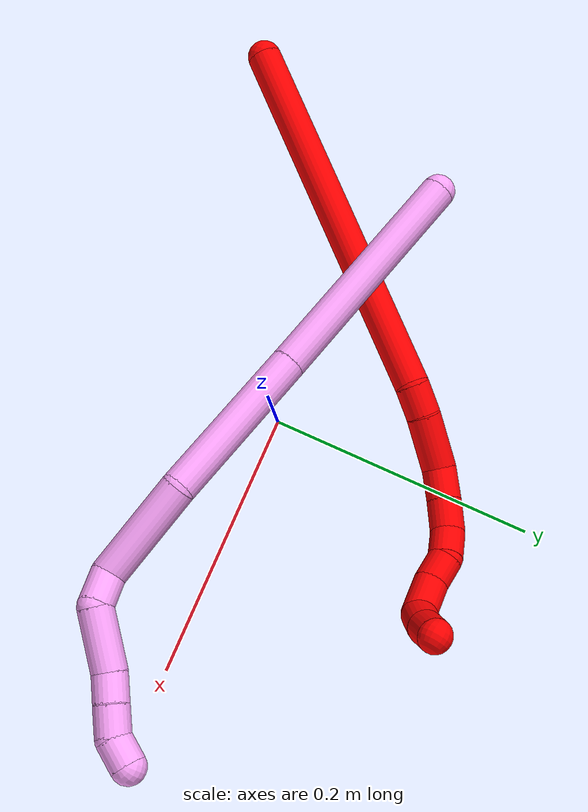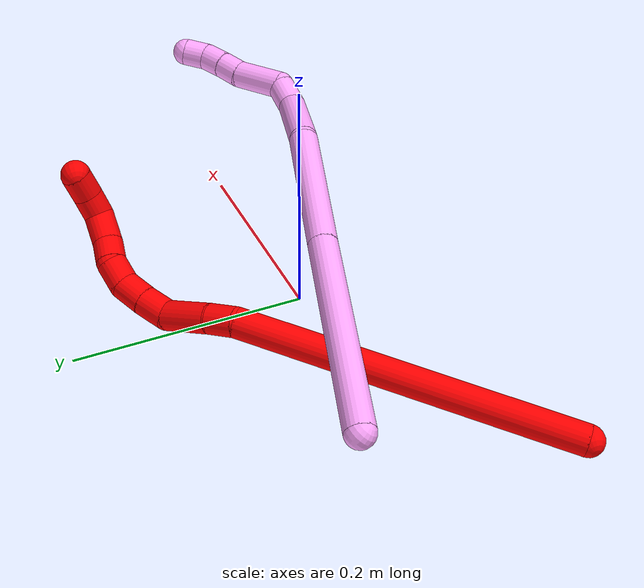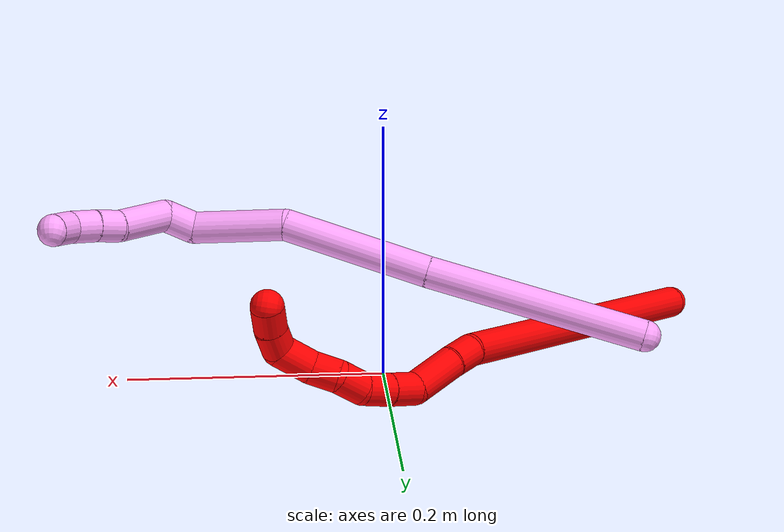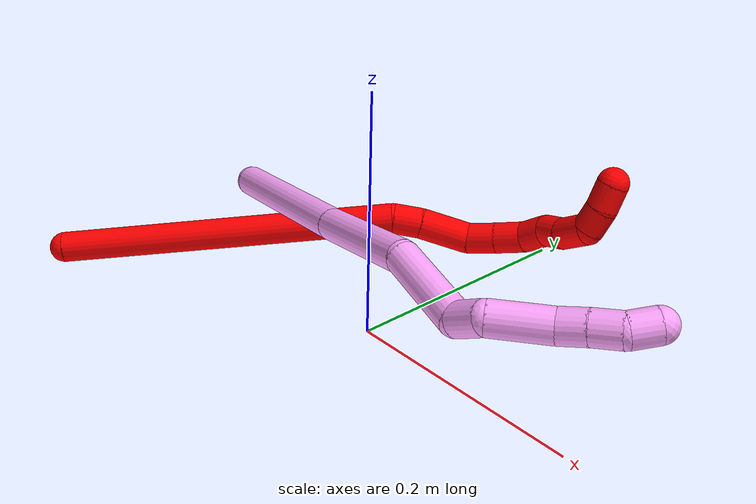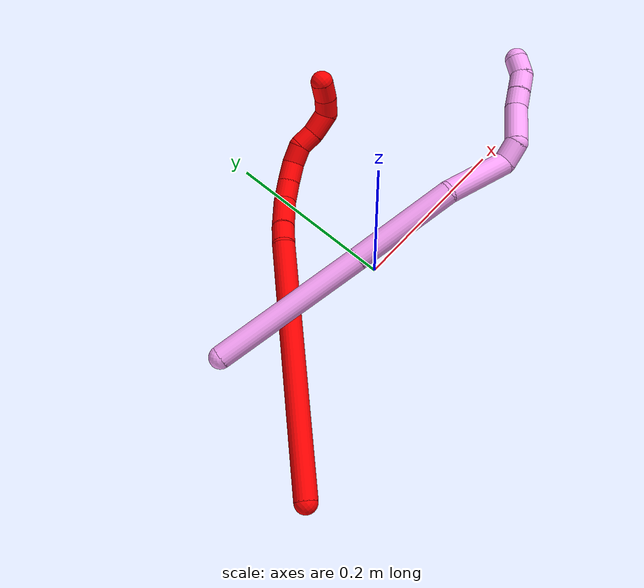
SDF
<sdf version="1.7">
 <world name="default">
  <model name="2">
   <static>0</static>
   <link name="2">
    <collision name="collision-cylinder-e_1_1_4">
     <pose>0.071573 0.083416 -0.084898 -2.365 0.541415 -1.1922</pose>
     <geometry><cylinder><radius>0.0125</radius><length>0.277767</length></cylinder></geometry>
     <surface>
      <friction><ode><mu>1.16</mu><mu2>1.16</mu2><slip1>0</slip1><slip2>0</slip2></ode></friction>
      <contact><ode><kp>1e+06</kp><kd>1</kd><max_vel>0</max_vel><min_depth>0.001</min_depth></ode></contact>
     </surface>
    </collision>
    <visual name="visual-cylinder-e_1_1_4">
     <pose>0.071573 0.083416 -0.084898 -2.365 0.541415 -1.1922</pose>
     <geometry><cylinder><radius>0.0125</radius><length>0.277767</length></cylinder></geometry>
     <material><ambient>1 0 0 1</ambient></material>
    </visual>
    <collision name="collision-cylinder-e_2_4_5">
     <pose>0.146439 0.175513 -0.17666 -2.23977 0.289108 -0.584113</pose>
     <geometry><cylinder><radius>0.0125</radius><length>0.023093</length></cylinder></geometry>
     <surface>
      <friction><ode><mu>1.16</mu><mu2>1.16</mu2><slip1>0</slip1><slip2>0</slip2></ode></friction>
      <contact><ode><kp>1e+06</kp><kd>1</kd><max_vel>0</max_vel><min_depth>0.001</min_depth></ode></contact>
     </surface>
    </collision>
    <visual name="visual-cylinder-e_2_4_5">
     <pose>0.146439 0.175513 -0.17666 -2.23977 0.289108 -0.584113</pose>
     <geometry><cylinder><radius>0.0125</radius><length>0.023093</length></cylinder></geometry>
     <material><ambient>1 0 0 1</ambient></material>
    </visual>
    <collision name="collision-cylinder-e_3_5_6">
     <pose>0.152889 0.200053 -0.195952 -2.23552 0.155488 -0.317359</pose>
     <geometry><cylinder><radius>0.0125</radius><length>0.040787</length></cylinder></geometry>
     <surface>
      <friction><ode><mu>1.16</mu><mu2>1.16</mu2><slip1>0</slip1><slip2>0</slip2></ode></friction>
      <contact><ode><kp>1e+06</kp><kd>1</kd><max_vel>0</max_vel><min_depth>0.001</min_depth></ode></contact>
     </surface>
    </collision>
    <visual name="visual-cylinder-e_3_5_6">
     <pose>0.152889 0.200053 -0.195952 -2.23552 0.155488 -0.317359</pose>
     <geometry><cylinder><radius>0.0125</radius><length>0.040787</length></cylinder></geometry>
     <material><ambient>1 0 0 1</ambient></material>
    </visual>
    <collision name="collision-cylinder-e_4_6_7">
     <pose>0.161036 0.221166 -0.218004 -2.64181 0.426927 -1.4082</pose>
     <geometry><cylinder><radius>0.0125</radius><length>0.024095</length></cylinder></geometry>
     <surface>
      <friction><ode><mu>1.16</mu><mu2>1.16</mu2><slip1>0</slip1><slip2>0</slip2></ode></friction>
      <contact><ode><kp>1e+06</kp><kd>1</kd><max_vel>0</max_vel><min_depth>0.001</min_depth></ode></contact>
     </surface>
    </collision>
    <visual name="visual-cylinder-e_4_6_7">
     <pose>0.161036 0.221166 -0.218004 -2.64181 0.426927 -1.4082</pose>
     <geometry><cylinder><radius>0.0125</radius><length>0.024095</length></cylinder></geometry>
     <material><ambient>1 0 0 1</ambient></material>
    </visual>
    <collision name="collision-cylinder-e_5_7_8">
     <pose>0.171047 0.230731 -0.237363 -2.7248 0.440883 -1.62871</pose>
     <geometry><cylinder><radius>0.0125</radius><length>0.023543</length></cylinder></geometry>
     <surface>
      <friction><ode><mu>1.16</mu><mu2>1.16</mu2><slip1>0</slip1><slip2>0</slip2></ode></friction>
      <contact><ode><kp>1e+06</kp><kd>1</kd><max_vel>0</max_vel><min_depth>0.001</min_depth></ode></contact>
     </surface>
    </collision>
    <visual name="visual-cylinder-e_5_7_8">
     <pose>0.171047 0.230731 -0.237363 -2.7248 0.440883 -1.62871</pose>
     <geometry><cylinder><radius>0.0125</radius><length>0.023543</length></cylinder></geometry>
     <material><ambient>1 0 0 1</ambient></material>
    </visual>
    <collision name="collision-cylinder-e_6_8_9">
     <pose>0.181599 0.234856 -0.256491 3.12195 0.531854 3.06951</pose>
     <geometry><cylinder><radius>0.0125</radius><length>0.021803</length></cylinder></geometry>
     <surface>
      <friction><ode><mu>1.16</mu><mu2>1.16</mu2><slip1>0</slip1><slip2>0</slip2></ode></friction>
      <contact><ode><kp>1e+06</kp><kd>1</kd><max_vel>0</max_vel><min_depth>0.001</min_depth></ode></contact>
     </surface>
    </collision>
    <visual name="visual-cylinder-e_6_8_9">
     <pose>0.181599 0.234856 -0.256491 3.12195 0.531854 3.06951</pose>
     <geometry><cylinder><radius>0.0125</radius><length>0.021803</length></cylinder></geometry>
     <material><ambient>1 0 0 1</ambient></material>
    </visual>
    <collision name="collision-cylinder-e_7_9_10">
     <pose>0.18807 0.233338 -0.276072 3.0114 0.091421 1.22376</pose>
     <geometry><cylinder><radius>0.0125</radius><length>0.020634</length></cylinder></geometry>
     <surface>
      <friction><ode><mu>1.16</mu><mu2>1.16</mu2><slip1>0</slip1><slip2>0</slip2></ode></friction>
      <contact><ode><kp>1e+06</kp><kd>1</kd><max_vel>0</max_vel><min_depth>0.001</min_depth></ode></contact>
     </surface>
    </collision>
    <visual name="visual-cylinder-e_7_9_10">
     <pose>0.18807 0.233338 -0.276072 3.0114 0.091421 1.22376</pose>
     <geometry><cylinder><radius>0.0125</radius><length>0.020634</length></cylinder></geometry>
     <material><ambient>1 0 0 1</ambient></material>
    </visual>
    <collision name="collision-cylinder-e_8_10_11">
     <pose>0.193708 0.229751 -0.298847 2.96448 0.351933 2.21532</pose>
     <geometry><cylinder><radius>0.0125</radius><length>0.027246</length></cylinder></geometry>
     <surface>
      <friction><ode><mu>1.16</mu><mu2>1.16</mu2><slip1>0</slip1><slip2>0</slip2></ode></friction>
      <contact><ode><kp>1e+06</kp><kd>1</kd><max_vel>0</max_vel><min_depth>0.001</min_depth></ode></contact>
     </surface>
    </collision>
    <visual name="visual-cylinder-e_8_10_11">
     <pose>0.193708 0.229751 -0.298847 2.96448 0.351933 2.21532</pose>
     <geometry><cylinder><radius>0.0125</radius><length>0.027246</length></cylinder></geometry>
     <material><ambient>1 0 0 1</ambient></material>
    </visual>
    <collision name="collision-cylinder-e_9_11_12">
     <pose>0.207216 0.224751 -0.315456 2.54233 1.06592 2.17673</pose>
     <geometry><cylinder><radius>0.0125</radius><length>0.020137</length></cylinder></geometry>
     <surface>
      <friction><ode><mu>1.16</mu><mu2>1.16</mu2><slip1>0</slip1><slip2>0</slip2></ode></friction>
      <contact><ode><kp>1e+06</kp><kd>1</kd><max_vel>0</max_vel><min_depth>0.001</min_depth></ode></contact>
     </surface>
    </collision>
    <visual name="visual-cylinder-e_9_11_12">
     <pose>0.207216 0.224751 -0.315456 2.54233 1.06592 2.17673</pose>
     <geometry><cylinder><radius>0.0125</radius><length>0.020137</length></cylinder></geometry>
     <material><ambient>1 0 0 1</ambient></material>
    </visual>
    <collision name="collision-cylinder-e_10_12_2">
     <pose>0.225705 0.218908 -0.321914 2.23761 1.18414 1.89106</pose>
     <geometry><cylinder><radius>0.0125</radius><length>0.020896</length></cylinder></geometry>
     <surface>
      <friction><ode><mu>1.16</mu><mu2>1.16</mu2><slip1>0</slip1><slip2>0</slip2></ode></friction>
      <contact><ode><kp>1e+06</kp><kd>1</kd><max_vel>0</max_vel><min_depth>0.001</min_depth></ode></contact>
     </surface>
    </collision>
    <visual name="visual-cylinder-e_10_12_2">
     <pose>0.225705 0.218908 -0.321914 2.23761 1.18414 1.89106</pose>
     <geometry><cylinder><radius>0.0125</radius><length>0.020896</length></cylinder></geometry>
     <material><ambient>1 0 0 1</ambient></material>
    </visual>
    <collision name="collision-sphere-2">
     <pose>0.235381 0.215812 -0.324351 0 -0 0</pose>
     <geometry><sphere><radius>0.0125</radius></sphere></geometry>
     <surface>
      <friction><ode><mu>1.16</mu><mu2>1.16</mu2><slip1>0</slip1><slip2>0</slip2></ode></friction>
      <contact><ode><kp>1e+06</kp><kd>1</kd><max_vel>0</max_vel><min_depth>0.001</min_depth></ode></contact>
     </surface>
    </collision>
    <visual name="visual-sphere-2">
     <pose>0.235381 0.215812 -0.324351 0 -0 0</pose>
     <geometry><sphere><radius>0.0125</radius></sphere></geometry>
     <material><ambient>1 0 0 1</ambient></material>
    </visual>
    <collision name="collision-sphere-12">
     <pose>0.216028 0.222004 -0.319478 0 -0 0</pose>
     <geometry><sphere><radius>0.0125</radius></sphere></geometry>
     <surface>
      <friction><ode><mu>1.16</mu><mu2>1.16</mu2><slip1>0</slip1><slip2>0</slip2></ode></friction>
      <contact><ode><kp>1e+06</kp><kd>1</kd><max_vel>0</max_vel><min_depth>0.001</min_depth></ode></contact>
     </surface>
    </collision>
    <visual name="visual-sphere-12">
     <pose>0.216028 0.222004 -0.319478 0 -0 0</pose>
     <geometry><sphere><radius>0.0125</radius></sphere></geometry>
     <material><ambient>1 0 0 1</ambient></material>
    </visual>
    <collision name="collision-sphere-11">
     <pose>0.198404 0.227498 -0.311435 0 -0 0</pose>
     <geometry><sphere><radius>0.0125</radius></sphere></geometry>
     <surface>
      <friction><ode><mu>1.16</mu><mu2>1.16</mu2><slip1>0</slip1><slip2>0</slip2></ode></friction>
      <contact><ode><kp>1e+06</kp><kd>1</kd><max_vel>0</max_vel><min_depth>0.001</min_depth></ode></contact>
     </surface>
    </collision>
    <visual name="visual-sphere-11">
     <pose>0.198404 0.227498 -0.311435 0 -0 0</pose>
     <geometry><sphere><radius>0.0125</radius></sphere></geometry>
     <material><ambient>1 0 0 1</ambient></material>
    </visual>
    <collision name="collision-sphere-10">
     <pose>0.189011 0.232004 -0.286259 0 -0 0</pose>
     <geometry><sphere><radius>0.0125</radius></sphere></geometry>
     <surface>
      <friction><ode><mu>1.16</mu><mu2>1.16</mu2><slip1>0</slip1><slip2>0</slip2></ode></friction>
      <contact><ode><kp>1e+06</kp><kd>1</kd><max_vel>0</max_vel><min_depth>0.001</min_depth></ode></contact>
     </surface>
    </collision>
    <visual name="visual-sphere-10">
     <pose>0.189011 0.232004 -0.286259 0 -0 0</pose>
     <geometry><sphere><radius>0.0125</radius></sphere></geometry>
     <material><ambient>1 0 0 1</ambient></material>
    </visual>
    <collision name="collision-sphere-9">
     <pose>0.187128 0.234671 -0.265885 0 -0 0</pose>
     <geometry><sphere><radius>0.0125</radius></sphere></geometry>
     <surface>
      <friction><ode><mu>1.16</mu><mu2>1.16</mu2><slip1>0</slip1><slip2>0</slip2></ode></friction>
      <contact><ode><kp>1e+06</kp><kd>1</kd><max_vel>0</max_vel><min_depth>0.001</min_depth></ode></contact>
     </surface>
    </collision>
    <visual name="visual-sphere-9">
     <pose>0.187128 0.234671 -0.265885 0 -0 0</pose>
     <geometry><sphere><radius>0.0125</radius></sphere></geometry>
     <material><ambient>1 0 0 1</ambient></material>
    </visual>
    <collision name="collision-sphere-4">
     <pose>0.143147 0.166831 -0.169796 0 -0 0</pose>
     <geometry><sphere><radius>0.0125</radius></sphere></geometry>
     <surface>
      <friction><ode><mu>1.16</mu><mu2>1.16</mu2><slip1>0</slip1><slip2>0</slip2></ode></friction>
      <contact><ode><kp>1e+06</kp><kd>1</kd><max_vel>0</max_vel><min_depth>0.001</min_depth></ode></contact>
     </surface>
    </collision>
    <visual name="visual-sphere-4">
     <pose>0.143147 0.166831 -0.169796 0 -0 0</pose>
     <geometry><sphere><radius>0.0125</radius></sphere></geometry>
     <material><ambient>1 0 0 1</ambient></material>
    </visual>
    <collision name="collision-sphere-1">
     <geometry><sphere><radius>0.0125</radius></sphere></geometry>
     <surface>
      <friction><ode><mu>1.16</mu><mu2>1.16</mu2><slip1>0</slip1><slip2>0</slip2></ode></friction>
      <contact><ode><kp>1e+06</kp><kd>1</kd><max_vel>0</max_vel><min_depth>0.001</min_depth></ode></contact>
     </surface>
    </collision>
    <visual name="visual-sphere-1">
     <geometry><sphere><radius>0.0125</radius></sphere></geometry>
     <material><ambient>1 0 0 1</ambient></material>
    </visual>
    <collision name="collision-sphere-8">
     <pose>0.176071 0.235041 -0.247097 0 -0 0</pose>
     <geometry><sphere><radius>0.0125</radius></sphere></geometry>
     <surface>
      <friction><ode><mu>1.16</mu><mu2>1.16</mu2><slip1>0</slip1><slip2>0</slip2></ode></friction>
      <contact><ode><kp>1e+06</kp><kd>1</kd><max_vel>0</max_vel><min_depth>0.001</min_depth></ode></contact>
     </surface>
    </collision>
    <visual name="visual-sphere-8">
     <pose>0.176071 0.235041 -0.247097 0 -0 0</pose>
     <geometry><sphere><radius>0.0125</radius></sphere></geometry>
     <material><ambient>1 0 0 1</ambient></material>
    </visual>
    <collision name="collision-sphere-5">
     <pose>0.149731 0.184195 -0.183524 0 -0 0</pose>
     <geometry><sphere><radius>0.0125</radius></sphere></geometry>
     <surface>
      <friction><ode><mu>1.16</mu><mu2>1.16</mu2><slip1>0</slip1><slip2>0</slip2></ode></friction>
      <contact><ode><kp>1e+06</kp><kd>1</kd><max_vel>0</max_vel><min_depth>0.001</min_depth></ode></contact>
     </surface>
    </collision>
    <visual name="visual-sphere-5">
     <pose>0.149731 0.184195 -0.183524 0 -0 0</pose>
     <geometry><sphere><radius>0.0125</radius></sphere></geometry>
     <material><ambient>1 0 0 1</ambient></material>
    </visual>
    <collision name="collision-sphere-6">
     <pose>0.156047 0.215911 -0.208379 0 -0 0</pose>
     <geometry><sphere><radius>0.0125</radius></sphere></geometry>
     <surface>
      <friction><ode><mu>1.16</mu><mu2>1.16</mu2><slip1>0</slip1><slip2>0</slip2></ode></friction>
      <contact><ode><kp>1e+06</kp><kd>1</kd><max_vel>0</max_vel><min_depth>0.001</min_depth></ode></contact>
     </surface>
    </collision>
    <visual name="visual-sphere-6">
     <pose>0.156047 0.215911 -0.208379 0 -0 0</pose>
     <geometry><sphere><radius>0.0125</radius></sphere></geometry>
     <material><ambient>1 0 0 1</ambient></material>
    </visual>
    <collision name="collision-sphere-7">
     <pose>0.166024 0.226421 -0.227629 0 -0 0</pose>
     <geometry><sphere><radius>0.0125</radius></sphere></geometry>
     <surface>
      <friction><ode><mu>1.16</mu><mu2>1.16</mu2><slip1>0</slip1><slip2>0</slip2></ode></friction>
      <contact><ode><kp>1e+06</kp><kd>1</kd><max_vel>0</max_vel><min_depth>0.001</min_depth></ode></contact>
     </surface>
    </collision>
    <visual name="visual-sphere-7">
     <pose>0.166024 0.226421 -0.227629 0 -0 0</pose>
     <geometry><sphere><radius>0.0125</radius></sphere></geometry>
     <material><ambient>1 0 0 1</ambient></material>
    </visual>
    <inertial>
     <pose>0.118824 0.142878 -0.15801 0 -0 0</pose>
     <mass>0.5</mass>
     <inertia>
      <ixx>-0.00084</ixx>
      <ixy>0</ixy>
      <ixz>0</ixz>
      <iyy>-0.001285</iyy>
      <iyz>0</iyz>
      <izz>-0.002046</izz>
     </inertia>
    </inertial>
   </link>
   <pose>-0.247758 -0.122092 0.011492 -1.82597 -0.884318 1.66942</pose>
  </model>
  <model name="4">
   <static>0</static>
   <link name="4">
    <collision name="collision-cylinder-e_1_1_4">
     <pose>0.075716 -0.03732 0.022472 1.02881 1.0487 0.631822</pose>
     <geometry><cylinder><radius>0.0125</radius><length>0.174707</length></cylinder></geometry>
     <surface>
      <friction><ode><mu>1.16</mu><mu2>1.16</mu2><slip1>0</slip1><slip2>0</slip2></ode></friction>
      <contact><ode><kp>1e+06</kp><kd>1</kd><max_vel>0</max_vel><min_depth>0.001</min_depth></ode></contact>
     </surface>
    </collision>
    <visual name="visual-cylinder-e_1_1_4">
     <pose>0.075716 -0.03732 0.022472 1.02881 1.0487 0.631822</pose>
     <geometry><cylinder><radius>0.0125</radius><length>0.174707</length></cylinder></geometry>
     <material><ambient>1 0.65098 0.996078 1</ambient></material>
    </visual>
    <collision name="collision-cylinder-e_2_4_5">
     <pose>0.202685 -0.098476 0.061635 0.959903 1.05442 0.588508</pose>
     <geometry><cylinder><radius>0.0125</radius><length>0.117875</length></cylinder></geometry>
     <surface>
      <friction><ode><mu>1.16</mu><mu2>1.16</mu2><slip1>0</slip1><slip2>0</slip2></ode></friction>
      <contact><ode><kp>1e+06</kp><kd>1</kd><max_vel>0</max_vel><min_depth>0.001</min_depth></ode></contact>
     </surface>
    </collision>
    <visual name="visual-cylinder-e_2_4_5">
     <pose>0.202685 -0.098476 0.061635 0.959903 1.05442 0.588508</pose>
     <geometry><cylinder><radius>0.0125</radius><length>0.117875</length></cylinder></geometry>
     <material><ambient>1 0.65098 0.996078 1</ambient></material>
    </visual>
    <collision name="collision-cylinder-e_3_5_6">
     <pose>0.282914 -0.145894 0.079052 1.54002 0.88746 0.863821</pose>
     <geometry><cylinder><radius>0.0125</radius><length>0.074731</length></cylinder></geometry>
     <surface>
      <friction><ode><mu>1.16</mu><mu2>1.16</mu2><slip1>0</slip1><slip2>0</slip2></ode></friction>
      <contact><ode><kp>1e+06</kp><kd>1</kd><max_vel>0</max_vel><min_depth>0.001</min_depth></ode></contact>
     </surface>
    </collision>
    <visual name="visual-cylinder-e_3_5_6">
     <pose>0.282914 -0.145894 0.079052 1.54002 0.88746 0.863821</pose>
     <geometry><cylinder><radius>0.0125</radius><length>0.074731</length></cylinder></geometry>
     <material><ambient>1 0.65098 0.996078 1</ambient></material>
    </visual>
    <collision name="collision-cylinder-e_4_6_7">
     <pose>0.32421 -0.169884 0.082065 0.17709 1.38444 0.146941</pose>
     <geometry><cylinder><radius>0.0125</radius><length>0.025073</length></cylinder></geometry>
     <surface>
      <friction><ode><mu>1.16</mu><mu2>1.16</mu2><slip1>0</slip1><slip2>0</slip2></ode></friction>
      <contact><ode><kp>1e+06</kp><kd>1</kd><max_vel>0</max_vel><min_depth>0.001</min_depth></ode></contact>
     </surface>
    </collision>
    <visual name="visual-cylinder-e_4_6_7">
     <pose>0.32421 -0.169884 0.082065 0.17709 1.38444 0.146941</pose>
     <geometry><cylinder><radius>0.0125</radius><length>0.025073</length></cylinder></geometry>
     <material><ambient>1 0.65098 0.996078 1</ambient></material>
    </visual>
    <collision name="collision-cylinder-e_5_7_8">
     <pose>0.355931 -0.168081 0.073722 -2.9364 1.06063 -2.79394</pose>
     <geometry><cylinder><radius>0.0125</radius><length>0.044466</length></cylinder></geometry>
     <surface>
      <friction><ode><mu>1.16</mu><mu2>1.16</mu2><slip1>0</slip1><slip2>0</slip2></ode></friction>
      <contact><ode><kp>1e+06</kp><kd>1</kd><max_vel>0</max_vel><min_depth>0.001</min_depth></ode></contact>
     </surface>
    </collision>
    <visual name="visual-cylinder-e_5_7_8">
     <pose>0.355931 -0.168081 0.073722 -2.9364 1.06063 -2.79394</pose>
     <geometry><cylinder><radius>0.0125</radius><length>0.044466</length></cylinder></geometry>
     <material><ambient>1 0.65098 0.996078 1</ambient></material>
    </visual>
    <collision name="collision-cylinder-e_6_8_9">
     <pose>0.385221 -0.16495 0.060249 -2.82937 1.27729 -2.72379</pose>
     <geometry><cylinder><radius>0.0125</radius><length>0.02066</length></cylinder></geometry>
     <surface>
      <friction><ode><mu>1.16</mu><mu2>1.16</mu2><slip1>0</slip1><slip2>0</slip2></ode></friction>
      <contact><ode><kp>1e+06</kp><kd>1</kd><max_vel>0</max_vel><min_depth>0.001</min_depth></ode></contact>
     </surface>
    </collision>
    <visual name="visual-cylinder-e_6_8_9">
     <pose>0.385221 -0.16495 0.060249 -2.82937 1.27729 -2.72379</pose>
     <geometry><cylinder><radius>0.0125</radius><length>0.02066</length></cylinder></geometry>
     <material><ambient>1 0.65098 0.996078 1</ambient></material>
    </visual>
    <collision name="collision-cylinder-e_7_9_10">
     <pose>0.405445 -0.163462 0.053867 -2.98166 1.23705 -2.91733</pose>
     <geometry><cylinder><radius>0.0125</radius><length>0.021879</length></cylinder></geometry>
     <surface>
      <friction><ode><mu>1.16</mu><mu2>1.16</mu2><slip1>0</slip1><slip2>0</slip2></ode></friction>
      <contact><ode><kp>1e+06</kp><kd>1</kd><max_vel>0</max_vel><min_depth>0.001</min_depth></ode></contact>
     </surface>
    </collision>
    <visual name="visual-cylinder-e_7_9_10">
     <pose>0.405445 -0.163462 0.053867 -2.98166 1.23705 -2.91733</pose>
     <geometry><cylinder><radius>0.0125</radius><length>0.021879</length></cylinder></geometry>
     <material><ambient>1 0.65098 0.996078 1</ambient></material>
    </visual>
    <collision name="collision-cylinder-e_8_10_2">
     <pose>0.423677 -0.15863 0.045263 -2.44233 0.873093 -1.81491</pose>
     <geometry><cylinder><radius>0.0125</radius><length>0.020608</length></cylinder></geometry>
     <surface>
      <friction><ode><mu>1.16</mu><mu2>1.16</mu2><slip1>0</slip1><slip2>0</slip2></ode></friction>
      <contact><ode><kp>1e+06</kp><kd>1</kd><max_vel>0</max_vel><min_depth>0.001</min_depth></ode></contact>
     </surface>
    </collision>
    <visual name="visual-cylinder-e_8_10_2">
     <pose>0.423677 -0.15863 0.045263 -2.44233 0.873093 -1.81491</pose>
     <geometry><cylinder><radius>0.0125</radius><length>0.020608</length></cylinder></geometry>
     <material><ambient>1 0.65098 0.996078 1</ambient></material>
    </visual>
    <collision name="collision-sphere-2">
     <pose>0.431573 -0.154369 0.040196 0 -0 0</pose>
     <geometry><sphere><radius>0.0125</radius></sphere></geometry>
     <surface>
      <friction><ode><mu>1.16</mu><mu2>1.16</mu2><slip1>0</slip1><slip2>0</slip2></ode></friction>
      <contact><ode><kp>1e+06</kp><kd>1</kd><max_vel>0</max_vel><min_depth>0.001</min_depth></ode></contact>
     </surface>
    </collision>
    <visual name="visual-sphere-2">
     <pose>0.431573 -0.154369 0.040196 0 -0 0</pose>
     <geometry><sphere><radius>0.0125</radius></sphere></geometry>
     <material><ambient>1 0.65098 0.996078 1</ambient></material>
    </visual>
    <collision name="collision-sphere-10">
     <pose>0.415781 -0.162891 0.050329 0 -0 0</pose>
     <geometry><sphere><radius>0.0125</radius></sphere></geometry>
     <surface>
      <friction><ode><mu>1.16</mu><mu2>1.16</mu2><slip1>0</slip1><slip2>0</slip2></ode></friction>
      <contact><ode><kp>1e+06</kp><kd>1</kd><max_vel>0</max_vel><min_depth>0.001</min_depth></ode></contact>
     </surface>
    </collision>
    <visual name="visual-sphere-10">
     <pose>0.415781 -0.162891 0.050329 0 -0 0</pose>
     <geometry><sphere><radius>0.0125</radius></sphere></geometry>
     <material><ambient>1 0.65098 0.996078 1</ambient></material>
    </visual>
    <collision name="collision-sphere-9">
     <pose>0.395109 -0.164032 0.057405 0 -0 0</pose>
     <geometry><sphere><radius>0.0125</radius></sphere></geometry>
     <surface>
      <friction><ode><mu>1.16</mu><mu2>1.16</mu2><slip1>0</slip1><slip2>0</slip2></ode></friction>
      <contact><ode><kp>1e+06</kp><kd>1</kd><max_vel>0</max_vel><min_depth>0.001</min_depth></ode></contact>
     </surface>
    </collision>
    <visual name="visual-sphere-9">
     <pose>0.395109 -0.164032 0.057405 0 -0 0</pose>
     <geometry><sphere><radius>0.0125</radius></sphere></geometry>
     <material><ambient>1 0.65098 0.996078 1</ambient></material>
    </visual>
    <collision name="collision-sphere-4">
     <pose>0.151432 -0.07464 0.044944 0 -0 0</pose>
     <geometry><sphere><radius>0.0125</radius></sphere></geometry>
     <surface>
      <friction><ode><mu>1.16</mu><mu2>1.16</mu2><slip1>0</slip1><slip2>0</slip2></ode></friction>
      <contact><ode><kp>1e+06</kp><kd>1</kd><max_vel>0</max_vel><min_depth>0.001</min_depth></ode></contact>
     </surface>
    </collision>
    <visual name="visual-sphere-4">
     <pose>0.151432 -0.07464 0.044944 0 -0 0</pose>
     <geometry><sphere><radius>0.0125</radius></sphere></geometry>
     <material><ambient>1 0.65098 0.996078 1</ambient></material>
    </visual>
    <collision name="collision-sphere-1">
     <geometry><sphere><radius>0.0125</radius></sphere></geometry>
     <surface>
      <friction><ode><mu>1.16</mu><mu2>1.16</mu2><slip1>0</slip1><slip2>0</slip2></ode></friction>
      <contact><ode><kp>1e+06</kp><kd>1</kd><max_vel>0</max_vel><min_depth>0.001</min_depth></ode></contact>
     </surface>
    </collision>
    <visual name="visual-sphere-1">
     <geometry><sphere><radius>0.0125</radius></sphere></geometry>
     <material><ambient>1 0.65098 0.996078 1</ambient></material>
    </visual>
    <collision name="collision-sphere-8">
     <pose>0.375333 -0.165868 0.063093 0 -0 0</pose>
     <geometry><sphere><radius>0.0125</radius></sphere></geometry>
     <surface>
      <friction><ode><mu>1.16</mu><mu2>1.16</mu2><slip1>0</slip1><slip2>0</slip2></ode></friction>
      <contact><ode><kp>1e+06</kp><kd>1</kd><max_vel>0</max_vel><min_depth>0.001</min_depth></ode></contact>
     </surface>
    </collision>
    <visual name="visual-sphere-8">
     <pose>0.375333 -0.165868 0.063093 0 -0 0</pose>
     <geometry><sphere><radius>0.0125</radius></sphere></geometry>
     <material><ambient>1 0.65098 0.996078 1</ambient></material>
    </visual>
    <collision name="collision-sphere-5">
     <pose>0.253938 -0.122313 0.078326 0 -0 0</pose>
     <geometry><sphere><radius>0.0125</radius></sphere></geometry>
     <surface>
      <friction><ode><mu>1.16</mu><mu2>1.16</mu2><slip1>0</slip1><slip2>0</slip2></ode></friction>
      <contact><ode><kp>1e+06</kp><kd>1</kd><max_vel>0</max_vel><min_depth>0.001</min_depth></ode></contact>
     </surface>
    </collision>
    <visual name="visual-sphere-5">
     <pose>0.253938 -0.122313 0.078326 0 -0 0</pose>
     <geometry><sphere><radius>0.0125</radius></sphere></geometry>
     <material><ambient>1 0.65098 0.996078 1</ambient></material>
    </visual>
    <collision name="collision-sphere-6">
     <pose>0.31189 -0.169474 0.079778 0 -0 0</pose>
     <geometry><sphere><radius>0.0125</radius></sphere></geometry>
     <surface>
      <friction><ode><mu>1.16</mu><mu2>1.16</mu2><slip1>0</slip1><slip2>0</slip2></ode></friction>
      <contact><ode><kp>1e+06</kp><kd>1</kd><max_vel>0</max_vel><min_depth>0.001</min_depth></ode></contact>
     </surface>
    </collision>
    <visual name="visual-sphere-6">
     <pose>0.31189 -0.169474 0.079778 0 -0 0</pose>
     <geometry><sphere><radius>0.0125</radius></sphere></geometry>
     <material><ambient>1 0.65098 0.996078 1</ambient></material>
    </visual>
    <collision name="collision-sphere-7">
     <pose>0.336529 -0.170293 0.084351 0 -0 0</pose>
     <geometry><sphere><radius>0.0125</radius></sphere></geometry>
     <surface>
      <friction><ode><mu>1.16</mu><mu2>1.16</mu2><slip1>0</slip1><slip2>0</slip2></ode></friction>
      <contact><ode><kp>1e+06</kp><kd>1</kd><max_vel>0</max_vel><min_depth>0.001</min_depth></ode></contact>
     </surface>
    </collision>
    <visual name="visual-sphere-7">
     <pose>0.336529 -0.170293 0.084351 0 -0 0</pose>
     <geometry><sphere><radius>0.0125</radius></sphere></geometry>
     <material><ambient>1 0.65098 0.996078 1</ambient></material>
    </visual>
    <inertial>
     <pose>0.215557 -0.102035 0.051581 0 -0 0</pose>
     <mass>0.5</mass>
     <inertia>
      <ixx>0.000471</ixx>
      <ixy>0</ixy>
      <ixz>0</ixz>
      <iyy>0.000722</iyy>
      <iyz>0</iyz>
      <izz>-0.000282</izz>
     </inertia>
    </inertial>
   </link>
   <pose>-0.199195 0.03995 0.040616 0.679294 -0.34966 0.263675</pose>
  </model>
 </world>
</sdf>
